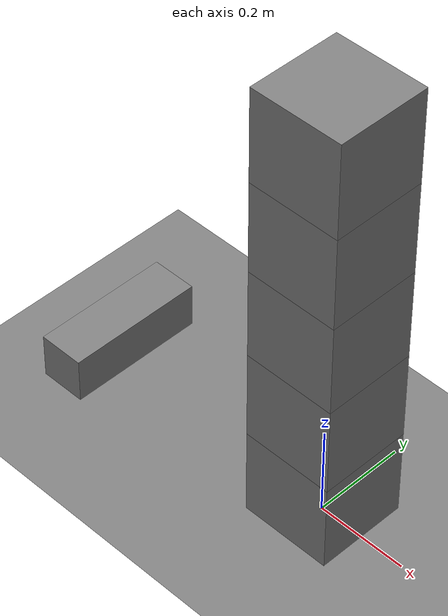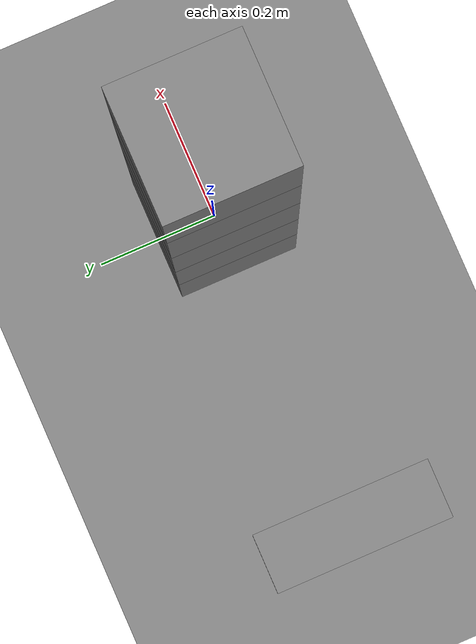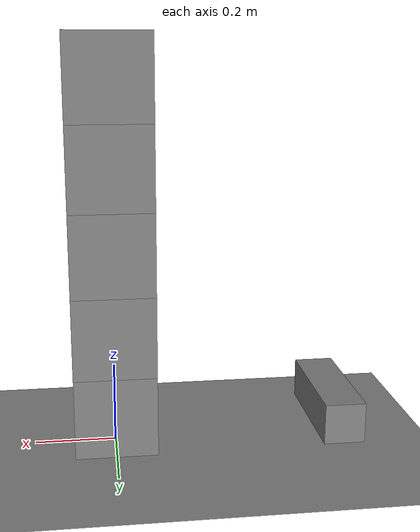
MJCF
<mujoco model="stack_fixture">
  <option timestep="0.002"/>
  <worldbody>
    <geom name="floor" type="plane" size="6 6 0.1" friction="1.0 0.005 0.0001"/>
    <body name="block1" pos="0 0 0.100">
      <freejoint/>
      <geom name="block1" type="box" size="0.1 0.1 0.1" mass="0.5" friction="0.1 0.005 0.0001"/>
    </body>
    <body name="block2" pos="0 0 0.300">
      <freejoint/>
      <geom name="block2" type="box" size="0.1 0.1 0.1" mass="0.5" friction="0.1 0.005 0.0001"/>
    </body>
    <body name="block3" pos="0 0 0.500">
      <freejoint/>
      <geom name="block3" type="box" size="0.1 0.1 0.1" mass="0.5" friction="0.1 0.005 0.0001"/>
    </body>
    <body name="block4" pos="0 0 0.700">
      <freejoint/>
      <geom name="block4" type="box" size="0.1 0.1 0.1" mass="0.5" friction="0.1 0.005 0.0001"/>
    </body>
    <body name="block5" pos="0 0 0.900">
      <freejoint/>
      <geom name="block5" type="box" size="0.1 0.1 0.1" mass="0.5" friction="0.1 0.005 0.0001"/>
    </body>
    <body name="pusher" pos="-0.55 0 0.08">
      <joint name="ram_slide" type="slide" axis="1 0 0" damping="400"/>
      <geom name="pusher" type="box" size="0.05 0.15 0.05" mass="3.0" friction="0.1 0.005 0.0001"/>
    </body>
  </worldbody>
  <actuator>
    <position name="ram_drive" joint="ram_slide" kp="1000" ctrlrange="0 0.7"/>
  </actuator>
  <keyframe>
    <key name="start" qpos="0 0 0.100 1 0 0 0  0 0 0.300 1 0 0 0  0 0 0.500 1 0 0 0  0 0 0.700 1 0 0 0  0 0 0.900 1 0 0 0  0" ctrl="0.56"/>
  </keyframe>
</mujoco>
